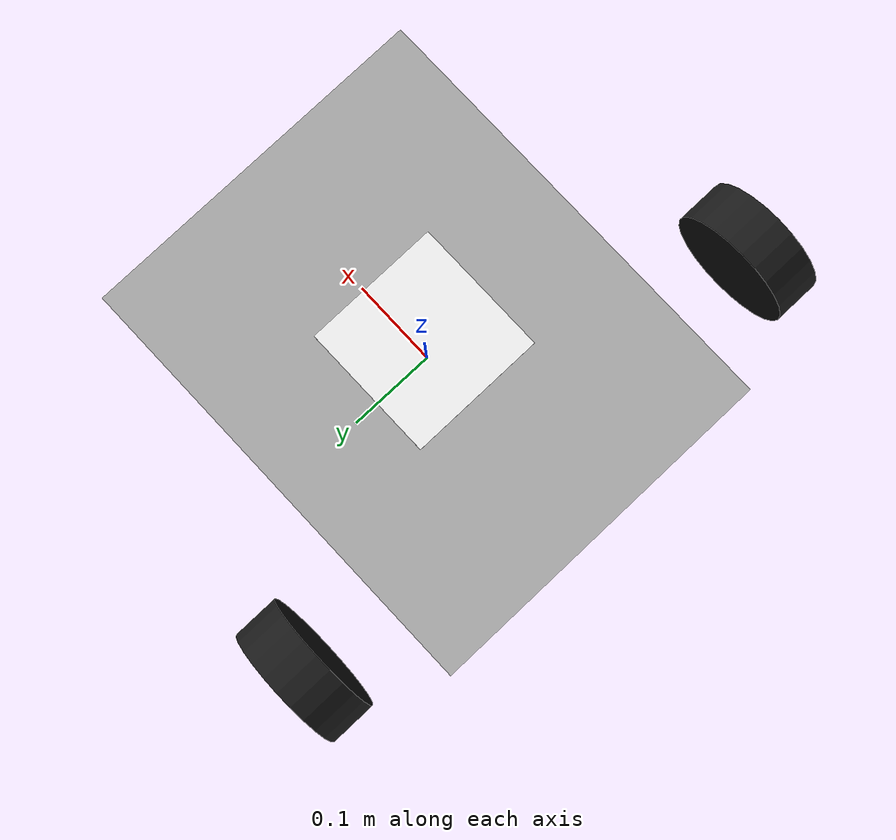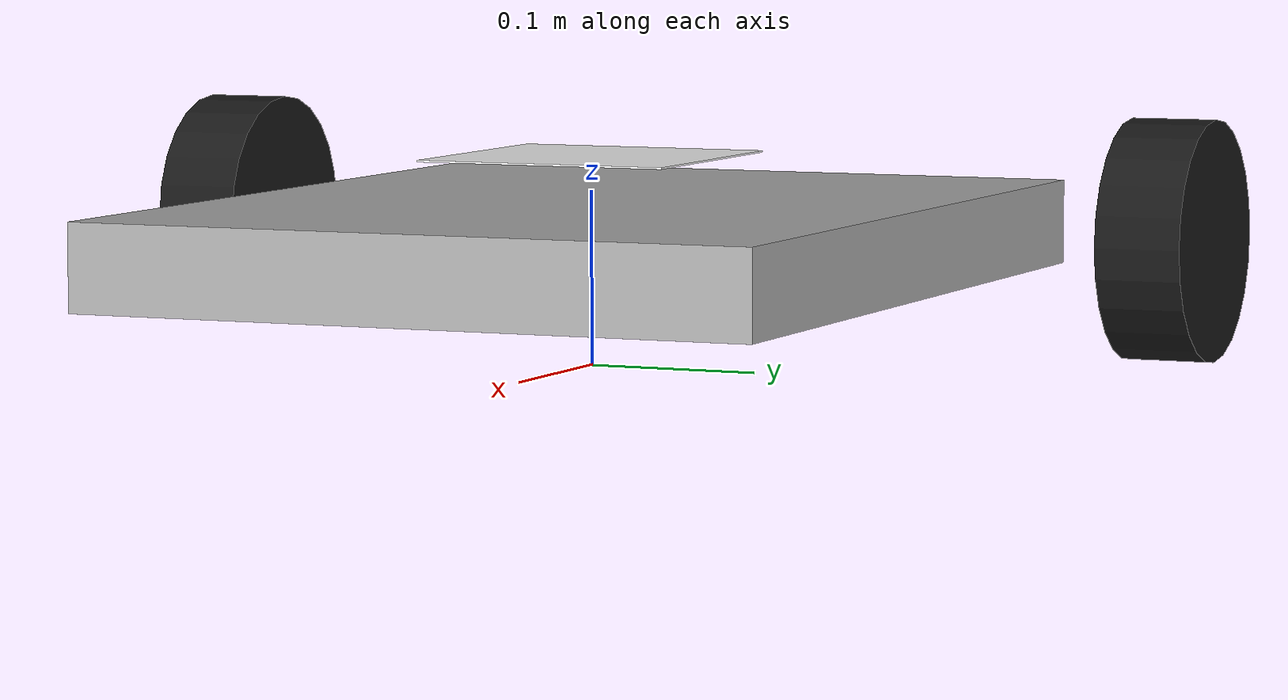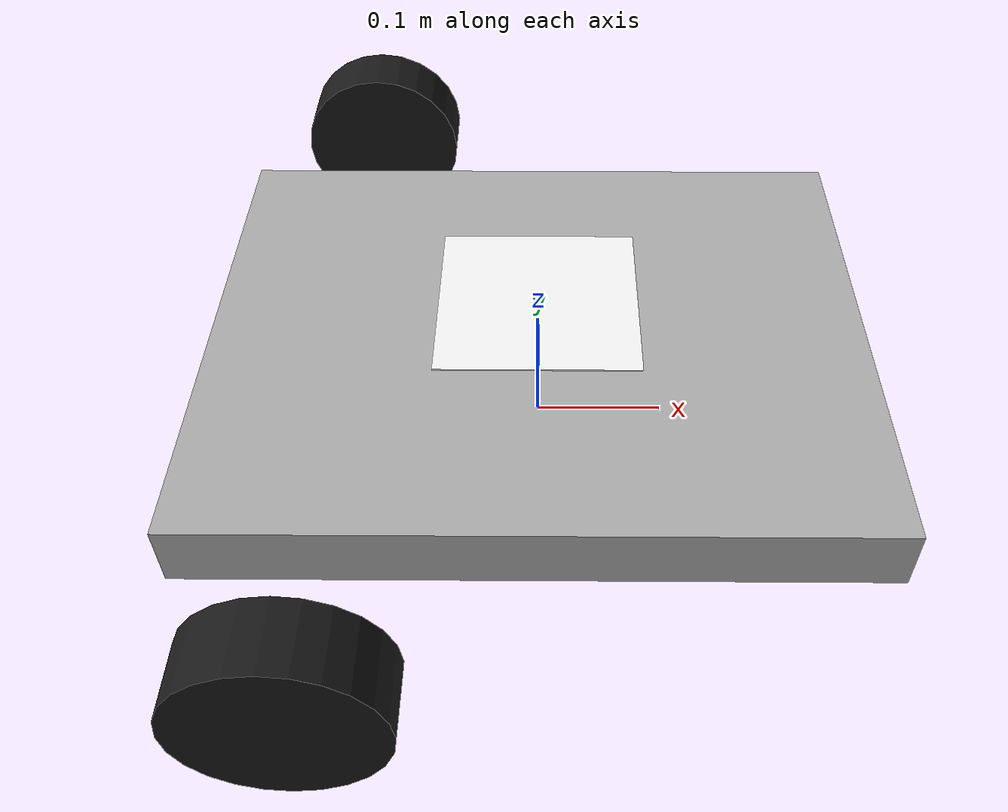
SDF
<?xml version="1.0" ?>
<sdf version="1.9">
  <model name="simple_robot_with_aruco">
    <link name='chassis'>
      <pose>0 0 0.07 0 0 0</pose>  <!-- Lowered height -->
      <inertial>
        <mass>5.0</mass>  <!-- Increased mass for stability -->
        <inertia>
          <ixx>0.2</ixx>
          <ixy>0</ixy>
          <ixz>0</ixz>
          <iyy>0.25</iyy>
          <iyz>0</iyz>
          <izz>0.4</izz>
        </inertia>
      </inertial>
      <visual name='visual'>
        <geometry>
          <box>
            <size>0.5 0.4 0.05</size>  <!-- Thinner chassis -->
          </box>
        </geometry>
        <material>
          <ambient>0.7 0.7 0.7 1</ambient>
          <diffuse>0.7 0.7 0.7 1</diffuse>
          <specular>0.7 0.7 0.7 1</specular>
        </material>
      </visual>
      <collision name='collision'>
        <geometry>
          <box>
            <size>0.5 0.4 0.05</size>
          </box>
        </geometry>
      </collision>
    </link>

    <!-- Left wheel -->
    <link name='left_wheel'>
      <pose relative_to="chassis">-0.15 0.3 0 -1.5707 0 0</pose>  <!-- Wider wheelbase -->
      <inertial>
        <mass>1.0</mass>
        <inertia>
          <ixx>0.043333</ixx>
          <ixy>0</ixy>
          <ixz>0</ixz>
          <iyy>0.043333</iyy>
          <iyz>0</iyz>
          <izz>0.08</izz>
        </inertia>
      </inertial>
      <visual name='visual'>
        <geometry>
          <cylinder>
            <radius>0.07</radius>  <!-- Smaller wheels -->
            <length>0.05</length>
          </cylinder>
        </geometry>
        <material>
          <ambient>0.1 0.1 0.1 1</ambient>
          <diffuse>0.1 0.1 0.1 1</diffuse>
          <specular>0.1 0.1 0.1 1</specular>
        </material>
      </visual>
      <collision name='collision'>
        <geometry>
          <cylinder>
            <radius>0.07</radius>
            <length>0.05</length>
          </cylinder>
        </geometry>
      </collision>
    </link>

    <!-- Right wheel -->
    <link name='right_wheel'>
      <pose relative_to="chassis">-0.15 -0.3 0 -1.5707 0 0</pose>  <!-- Wider wheelbase -->
      <inertial>
        <mass>1.0</mass>
        <inertia>
          <ixx>0.043333</ixx>
          <ixy>0</ixy>
          <ixz>0</ixz>
          <iyy>0.043333</iyy>
          <iyz>0</iyz>
          <izz>0.08</izz>
        </inertia>
      </inertial>
      <visual name='visual'>
        <geometry>
          <cylinder>
            <radius>0.07</radius>
            <length>0.05</length>
          </cylinder>
        </geometry>
        <material>
          <ambient>0.1 0.1 0.1 1</ambient>
          <diffuse>0.1 0.1 0.1 1</diffuse>
          <specular>0.1 0.1 0.1 1</specular>
        </material>
      </visual>
      <collision name='collision'>
        <geometry>
          <cylinder>
            <radius>0.07</radius>
            <length>0.05</length>
          </cylinder>
        </geometry>
      </collision>
    </link>

    <!-- ArUco marker link -->
    <link name="aruco_marker_link">
      <pose relative_to="chassis">0 0 0.05 0 0 0</pose>
      <inertial>
        <mass>0.01</mass>
        <inertia>
          <ixx>0.000001</ixx>
          <ixy>0</ixy>
          <ixz>0</ixz>
          <iyy>0.000001</iyy>
          <iyz>0</iyz>
          <izz>0.000001</izz>
        </inertia>
      </inertial>
      <visual name="visual">
        <geometry>
          <box>
            <size>0.15 0.15 0.001</size>
          </box>
        </geometry>
        <material>
          <ambient>1.0 1.0 1.0 1</ambient>
          <diffuse>1.0 1.0 1.0 1</diffuse>
          <specular>0.5 0.5 0.5 1</specular>
          <pbr>
            <metal>
              <albedo_map>materials/textures/aruco_marker.png</albedo_map>
            </metal>
          </pbr>
        </material>
      </visual>
      <collision name="collision">
        <geometry>
          <box>
            <size>0.15 0.15 0.001</size>
          </box>
        </geometry>
      </collision>
    </link>

    <!-- Joints -->
    <joint name='left_wheel_joint' type='revolute'>
      <pose relative_to='left_wheel'/>
      <parent>chassis</parent>
      <child>left_wheel</child>
      <axis>
        <xyz>0 0 1</xyz>
        <limit>
          <lower>-1.79769e+308</lower>
          <upper>1.79769e+308</upper>
        </limit>
      </axis>
    </joint>

    <joint name='right_wheel_joint' type='revolute'>
      <pose relative_to='right_wheel'/>
      <parent>chassis</parent>
      <child>right_wheel</child>
      <axis>
        <xyz>0 0 1</xyz>
        <limit>
          <lower>-1.79769e+308</lower>
          <upper>1.79769e+308</upper>
        </limit>
      </axis>
    </joint>

    <!-- Fixed joint for ArUco marker -->
    <joint name="aruco_marker_joint" type="fixed">
      <parent>chassis</parent>
      <child>aruco_marker_link</child>
    </joint>

    <!-- Differential drive plugin -->
    <plugin
      filename="gz-sim-diff-drive-system"
      name="gz::sim::systems::DiffDrive">
      <left_joint>left_wheel_joint</left_joint>
      <right_joint>right_wheel_joint</right_joint>
      <wheel_separation>0.6</wheel_separation>
      <wheel_radius>0.07</wheel_radius>
      <odom_publish_frequency>10</odom_publish_frequency>
      <topic>cmd_vel</topic>
    </plugin>
  </model>
</sdf>
